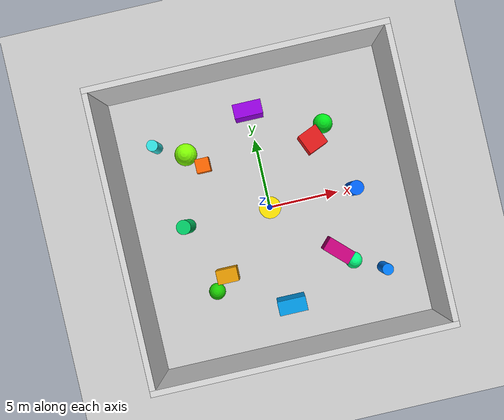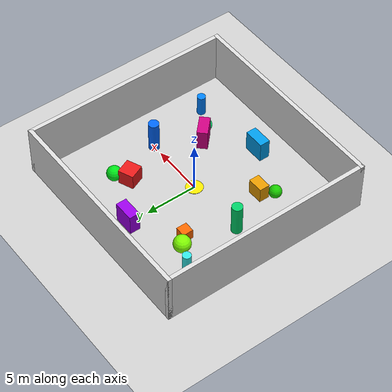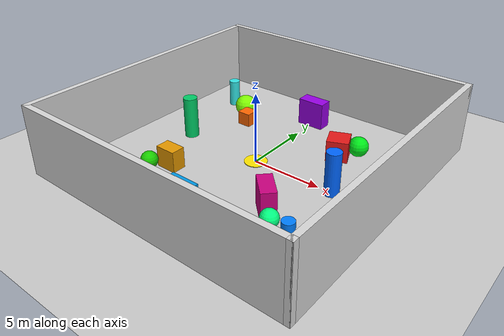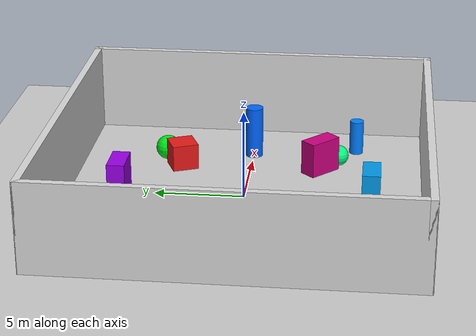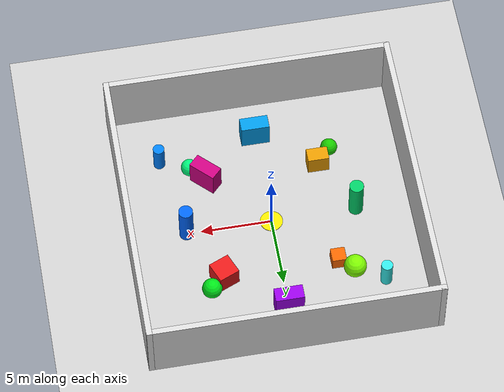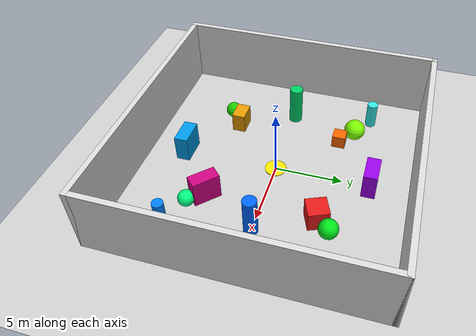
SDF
<?xml version="1.0"?>
<sdf version="1.10">
  <world name="drone_world">

    <physics name="1ms" type="ignored">
      <max_step_size>0.001</max_step_size>
      <real_time_factor>1.0</real_time_factor>
    </physics>

    <plugin filename="gz-sim-physics-system"
            name="gz::sim::systems::Physics"/>
    <plugin filename="gz-sim-user-commands-system"
            name="gz::sim::systems::UserCommands"/>
    <plugin filename="gz-sim-scene-broadcaster-system"
            name="gz::sim::systems::SceneBroadcaster"/>
    <plugin filename="gz-sim-sensors-system"
            name="gz::sim::systems::Sensors">
      <render_engine>ogre2</render_engine>
    </plugin>
    <plugin filename="gz-sim-imu-system"
            name="gz::sim::systems::Imu"/>

    <light name="sun" type="directional">
      <pose>0 0 100 0 0 0</pose>
      <diffuse>1 1 1 1</diffuse>
      <specular>0.5 0.5 0.5 1</specular>
      <direction>-0.5 0.1 -0.9</direction>
      <cast_shadows>true</cast_shadows>
    </light>

    <!-- Extra lights for better colors -->
    <light name="light2" type="point">
      <pose>0 0 8 0 0 0</pose>
      <diffuse>0.8 0.8 0.8 1</diffuse>
      <specular>0.2 0.2 0.2 1</specular>
      <attenuation>
        <range>20</range>
        <linear>0.05</linear>
      </attenuation>
    </light>

    <!-- Ground - light grey -->
    <model name="ground_plane">
      <static>true</static>
      <link name="link">
        <collision name="col">
          <geometry><plane><normal>0 0 1</normal>
          <size>200 200</size></plane></geometry>
        </collision>
        <visual name="vis">
          <geometry><plane><normal>0 0 1</normal>
          <size>200 200</size></plane></geometry>
          <material>
            <ambient>0.6 0.6 0.6 1</ambient>
            <diffuse>0.8 0.8 0.8 1</diffuse>
            <specular>0.1 0.1 0.1 1</specular>
          </material>
        </visual>
      </link>
    </model>

    <!-- Landing Pad - YELLOW -->
    <model name="landing_pad">
      <static>true</static>
      <pose>0 0 0.02 0 0 0</pose>
      <link name="link">
        <visual name="vis">
          <geometry><cylinder><radius>0.8</radius>
          <length>0.04</length></cylinder></geometry>
          <material>
            <ambient>1.0 0.9 0.0 1</ambient>
            <diffuse>1.0 0.9 0.0 1</diffuse>
            <specular>0.5 0.5 0.0 1</specular>
          </material>
        </visual>
      </link>
    </model>

    <!-- WALL North - LIGHT GREY -->
    <model name="wall_north">
      <static>true</static><pose>0 10 2.5 0 0 0</pose>
      <link name="link">
        <collision name="col"><geometry><box>
          <size>20.4 0.4 5</size></box></geometry></collision>
        <visual name="vis"><geometry><box>
          <size>20.4 0.4 5</size></box></geometry>
          <material>
            <ambient>0.75 0.75 0.75 1</ambient>
            <diffuse>0.85 0.85 0.85 1</diffuse>
            <specular>0.2 0.2 0.2 1</specular>
          </material>
        </visual>
      </link>
    </model>

    <!-- WALL South - LIGHT GREY -->
    <model name="wall_south">
      <static>true</static><pose>0 -10 2.5 0 0 0</pose>
      <link name="link">
        <collision name="col"><geometry><box>
          <size>20.4 0.4 5</size></box></geometry></collision>
        <visual name="vis"><geometry><box>
          <size>20.4 0.4 5</size></box></geometry>
          <material>
            <ambient>0.75 0.75 0.75 1</ambient>
            <diffuse>0.85 0.85 0.85 1</diffuse>
            <specular>0.2 0.2 0.2 1</specular>
          </material>
        </visual>
      </link>
    </model>

    <!-- WALL East - LIGHT GREY -->
    <model name="wall_east">
      <static>true</static><pose>10 0 2.5 0 0 0</pose>
      <link name="link">
        <collision name="col"><geometry><box>
          <size>0.4 20.4 5</size></box></geometry></collision>
        <visual name="vis"><geometry><box>
          <size>0.4 20.4 5</size></box></geometry>
          <material>
            <ambient>0.75 0.75 0.75 1</ambient>
            <diffuse>0.85 0.85 0.85 1</diffuse>
            <specular>0.2 0.2 0.2 1</specular>
          </material>
        </visual>
      </link>
    </model>

    <!-- WALL West - LIGHT GREY -->
    <model name="wall_west">
      <static>true</static><pose>-10 0 2.5 0 0 0</pose>
      <link name="link">
        <collision name="col"><geometry><box>
          <size>0.4 20.4 5</size></box></geometry></collision>
        <visual name="vis"><geometry><box>
          <size>0.4 20.4 5</size></box></geometry>
          <material>
            <ambient>0.75 0.75 0.75 1</ambient>
            <diffuse>0.85 0.85 0.85 1</diffuse>
            <specular>0.2 0.2 0.2 1</specular>
          </material>
        </visual>
      </link>
    </model>

    <!-- ===== RED BOXES ===== -->
    <model name="box_1">
      <static>true</static><pose>4 4 0.75 0 0 0.4</pose>
      <link name="link">
        <collision name="col"><geometry><box>
          <size>1.5 1.5 1.5</size></box></geometry></collision>
        <visual name="vis"><geometry><box>
          <size>1.5 1.5 1.5</size></box></geometry>
          <material>
            <ambient>0.9 0.1 0.1 1</ambient>
            <diffuse>0.9 0.1 0.1 1</diffuse>
            <specular>0.5 0.1 0.1 1</specular>
          </material>
        </visual>
      </link>
    </model>

    <model name="box_2">
      <static>true</static><pose>-4 4 0.5 0 0 0</pose>
      <link name="link">
        <collision name="col"><geometry><box>
          <size>1 1 1</size></box></geometry></collision>
        <visual name="vis"><geometry><box>
          <size>1 1 1</size></box></geometry>
          <material>
            <ambient>1.0 0.4 0.0 1</ambient>
            <diffuse>1.0 0.4 0.0 1</diffuse>
            <specular>0.5 0.2 0.0 1</specular>
          </material>
        </visual>
      </link>
    </model>

    <model name="box_3">
      <static>true</static><pose>4 -4 1.0 0 0 0.8</pose>
      <link name="link">
        <collision name="col"><geometry><box>
          <size>1 2 2</size></box></geometry></collision>
        <visual name="vis"><geometry><box>
          <size>1 2 2</size></box></geometry>
          <material>
            <ambient>0.8 0.0 0.5 1</ambient>
            <diffuse>0.8 0.0 0.5 1</diffuse>
            <specular>0.4 0.0 0.2 1</specular>
          </material>
        </visual>
      </link>
    </model>

    <model name="box_4">
      <static>true</static><pose>-4 -4 0.75 0 0 0</pose>
      <link name="link">
        <collision name="col"><geometry><box>
          <size>1.5 1 1.5</size></box></geometry></collision>
        <visual name="vis"><geometry><box>
          <size>1.5 1 1.5</size></box></geometry>
          <material>
            <ambient>0.9 0.6 0.0 1</ambient>
            <diffuse>0.9 0.6 0.0 1</diffuse>
            <specular>0.5 0.3 0.0 1</specular>
          </material>
        </visual>
      </link>
    </model>

    <model name="box_5">
      <static>true</static><pose>0 7 1.0 0 0 0</pose>
      <link name="link">
        <collision name="col"><geometry><box>
          <size>2 1 2</size></box></geometry></collision>
        <visual name="vis"><geometry><box>
          <size>2 1 2</size></box></geometry>
          <material>
            <ambient>0.6 0.0 0.9 1</ambient>
            <diffuse>0.6 0.0 0.9 1</diffuse>
            <specular>0.3 0.0 0.5 1</specular>
          </material>
        </visual>
      </link>
    </model>

    <model name="box_6">
      <static>true</static><pose>0 -7 1.0 0 0 0</pose>
      <link name="link">
        <collision name="col"><geometry><box>
          <size>2 1 2</size></box></geometry></collision>
        <visual name="vis"><geometry><box>
          <size>2 1 2</size></box></geometry>
          <material>
            <ambient>0.0 0.6 0.9 1</ambient>
            <diffuse>0.0 0.6 0.9 1</diffuse>
            <specular>0.0 0.3 0.5 1</specular>
          </material>
        </visual>
      </link>
    </model>

    <!-- ===== BLUE CYLINDERS ===== -->
    <model name="cylinder_1">
      <static>true</static><pose>6 0 1.5 0 0 0</pose>
      <link name="link">
        <collision name="col"><geometry><cylinder>
          <radius>0.5</radius><length>3</length>
        </cylinder></geometry></collision>
        <visual name="vis"><geometry><cylinder>
          <radius>0.5</radius><length>3</length>
        </cylinder></geometry>
          <material>
            <ambient>0.0 0.4 1.0 1</ambient>
            <diffuse>0.0 0.4 1.0 1</diffuse>
            <specular>0.0 0.2 0.6 1</specular>
          </material>
        </visual>
      </link>
    </model>

    <model name="cylinder_2">
      <static>true</static><pose>-6 0 1.5 0 0 0</pose>
      <link name="link">
        <collision name="col"><geometry><cylinder>
          <radius>0.5</radius><length>3</length>
        </cylinder></geometry></collision>
        <visual name="vis"><geometry><cylinder>
          <radius>0.5</radius><length>3</length>
        </cylinder></geometry>
          <material>
            <ambient>0.0 0.8 0.4 1</ambient>
            <diffuse>0.0 0.8 0.4 1</diffuse>
            <specular>0.0 0.4 0.2 1</specular>
          </material>
        </visual>
      </link>
    </model>

    <model name="cylinder_3">
      <static>true</static><pose>7 -6 1.0 0 0 0</pose>
      <link name="link">
        <collision name="col"><geometry><cylinder>
          <radius>0.4</radius><length>2</length>
        </cylinder></geometry></collision>
        <visual name="vis"><geometry><cylinder>
          <radius>0.4</radius><length>2</length>
        </cylinder></geometry>
          <material>
            <ambient>0.0 0.5 1.0 1</ambient>
            <diffuse>0.0 0.5 1.0 1</diffuse>
            <specular>0.0 0.2 0.5 1</specular>
          </material>
        </visual>
      </link>
    </model>

    <model name="cylinder_4">
      <static>true</static><pose>-7 6 1.0 0 0 0</pose>
      <link name="link">
        <collision name="col"><geometry><cylinder>
          <radius>0.4</radius><length>2</length>
        </cylinder></geometry></collision>
        <visual name="vis"><geometry><cylinder>
          <radius>0.4</radius><length>2</length>
        </cylinder></geometry>
          <material>
            <ambient>0.2 0.9 0.9 1</ambient>
            <diffuse>0.2 0.9 0.9 1</diffuse>
            <specular>0.1 0.5 0.5 1</specular>
          </material>
        </visual>
      </link>
    </model>

    <!-- ===== GREEN SPHERES ===== -->
    <model name="sphere_1">
      <static>true</static><pose>5 5 0.7 0 0 0</pose>
      <link name="link">
        <collision name="col"><geometry><sphere>
          <radius>0.7</radius></sphere></geometry></collision>
        <visual name="vis"><geometry><sphere>
          <radius>0.7</radius></sphere></geometry>
          <material>
            <ambient>0.0 0.9 0.1 1</ambient>
            <diffuse>0.0 0.9 0.1 1</diffuse>
            <specular>0.0 0.5 0.0 1</specular>
          </material>
        </visual>
      </link>
    </model>

    <model name="sphere_2">
      <static>true</static><pose>-5 -5 0.6 0 0 0</pose>
      <link name="link">
        <collision name="col"><geometry><sphere>
          <radius>0.6</radius></sphere></geometry></collision>
        <visual name="vis"><geometry><sphere>
          <radius>0.6</radius></sphere></geometry>
          <material>
            <ambient>0.1 0.8 0.0 1</ambient>
            <diffuse>0.1 0.8 0.0 1</diffuse>
            <specular>0.0 0.4 0.0 1</specular>
          </material>
        </visual>
      </link>
    </model>

    <model name="sphere_3">
      <static>true</static><pose>-5 5 0.8 0 0 0</pose>
      <link name="link">
        <collision name="col"><geometry><sphere>
          <radius>0.8</radius></sphere></geometry></collision>
        <visual name="vis"><geometry><sphere>
          <radius>0.8</radius></sphere></geometry>
          <material>
            <ambient>0.5 1.0 0.0 1</ambient>
            <diffuse>0.5 1.0 0.0 1</diffuse>
            <specular>0.2 0.5 0.0 1</specular>
          </material>
        </visual>
      </link>
    </model>

    <model name="sphere_4">
      <static>true</static><pose>5 -5 0.6 0 0 0</pose>
      <link name="link">
        <collision name="col"><geometry><sphere>
          <radius>0.6</radius></sphere></geometry></collision>
        <visual name="vis"><geometry><sphere>
          <radius>0.6</radius></sphere></geometry>
          <material>
            <ambient>0.0 1.0 0.5 1</ambient>
            <diffuse>0.0 1.0 0.5 1</diffuse>
            <specular>0.0 0.5 0.2 1</specular>
          </material>
        </visual>
      </link>
    </model>

  </world>
</sdf>
